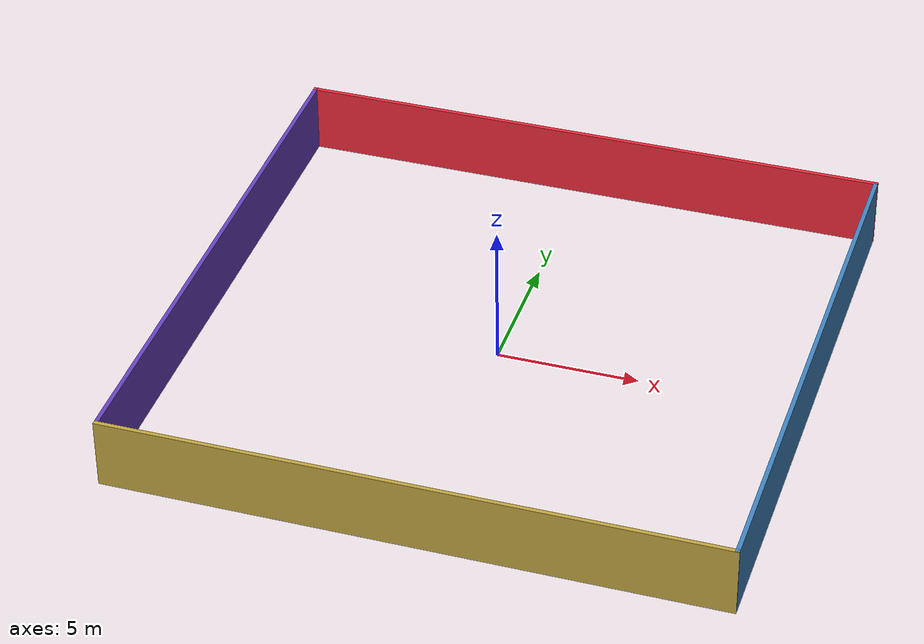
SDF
<?xml version='1.0'?>
<sdf version='1.6'>
  <model name='one_room'>
    <pose frame=''>0.293875 0.054512 0 0 -0 0</pose>
    <link name='Wall_5'>
      <collision name='Wall_5_Collision'>
        <geometry>
          <box>
            <size>21.25 0.15 2.5</size>
          </box>
        </geometry>
        <pose frame=''>0 0 1.25 0 -0 0</pose>
      </collision>
      <visual name='Wall_5_Visual'>
        <pose frame=''>0 0 1.25 0 -0 0</pose>
        <geometry>
          <box>
            <size>21.25 0.15 2.5</size>
          </box>
        </geometry>
        <material>
          <script>
            <uri>file://media/materials/scripts/gazebo.material</uri>
            <name>Gazebo/Grey</name>
          </script>
          <ambient>0.74902 0.639216 0.25098 1</ambient>
        </material>
        <meta>
          <layer>0</layer>
        </meta>
      </visual>
      <pose frame=''>0 -10.3152 0 0 -0 0</pose>
    </link>
    <link name='Wall_6'>
      <collision name='Wall_6_Collision'>
        <geometry>
          <box>
            <size>20.75 0.15 2.5</size>
          </box>
        </geometry>
        <pose frame=''>0 0 1.25 0 -0 0</pose>
      </collision>
      <visual name='Wall_6_Visual'>
        <pose frame=''>0 0 1.25 0 -0 0</pose>
        <geometry>
          <box>
            <size>20.75 0.15 2.5</size>
          </box>
        </geometry>
        <material>
          <script>
            <uri>file://media/materials/scripts/gazebo.material</uri>
            <name>Gazebo/Grey</name>
          </script>
          <ambient>0.25098 0.517647 0.74902 1</ambient>
        </material>
        <meta>
          <layer>0</layer>
        </meta>
      </visual>
      <pose frame=''>10.55 0.015208 0 0 -0 1.5708</pose>
    </link>
    <link name='Wall_8'>
      <collision name='Wall_8_Collision'>
        <geometry>
          <box>
            <size>21.25 0.15 2.5</size>
          </box>
        </geometry>
        <pose frame=''>0 0 1.25 0 -0 0</pose>
      </collision>
      <visual name='Wall_8_Visual'>
        <pose frame=''>0 0 1.25 0 -0 0</pose>
        <geometry>
          <box>
            <size>21.25 0.15 2.5</size>
          </box>
        </geometry>
        <material>
          <script>
            <uri>file://media/materials/scripts/gazebo.material</uri>
            <name>Gazebo/Grey</name>
          </script>
          <ambient>0.92549 0.160784 0.227451 1</ambient>
        </material>
        <meta>
          <layer>0</layer>
        </meta>
      </visual>
      <pose frame=''>0 10.3152 0 0 -0 3.14159</pose>
    </link>
    <link name='Wall_9'>
      <collision name='Wall_9_Collision'>
        <geometry>
          <box>
            <size>20.75 0.15 2.5</size>
          </box>
        </geometry>
        <pose frame=''>0 0 1.25 0 -0 0</pose>
      </collision>
      <visual name='Wall_9_Visual'>
        <pose frame=''>0 0 1.25 0 -0 0</pose>
        <geometry>
          <box>
            <size>20.75 0.15 2.5</size>
          </box>
        </geometry>
        <material>
          <script>
            <uri>file://media/materials/scripts/gazebo.material</uri>
            <name>Gazebo/Grey</name>
          </script>
          <ambient>0.407843 0.25098 0.74902 1</ambient>
        </material>
        <meta>
          <layer>0</layer>
        </meta>
      </visual>
      <pose frame=''>-10.55 0.015208 0 0 -0 -1.5708</pose>
    </link>
    <static>1</static>
  </model>
</sdf>
